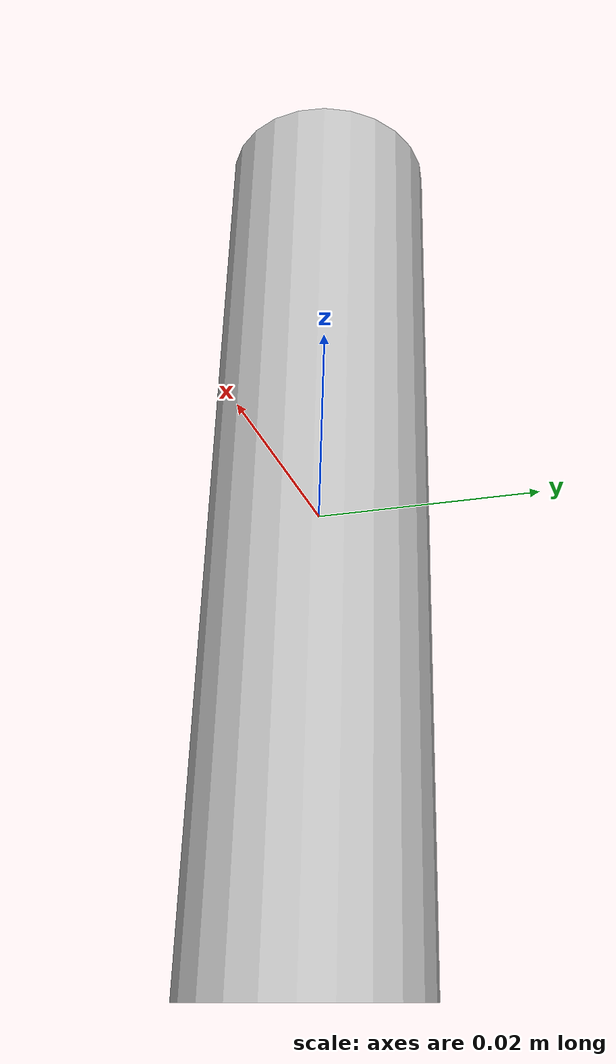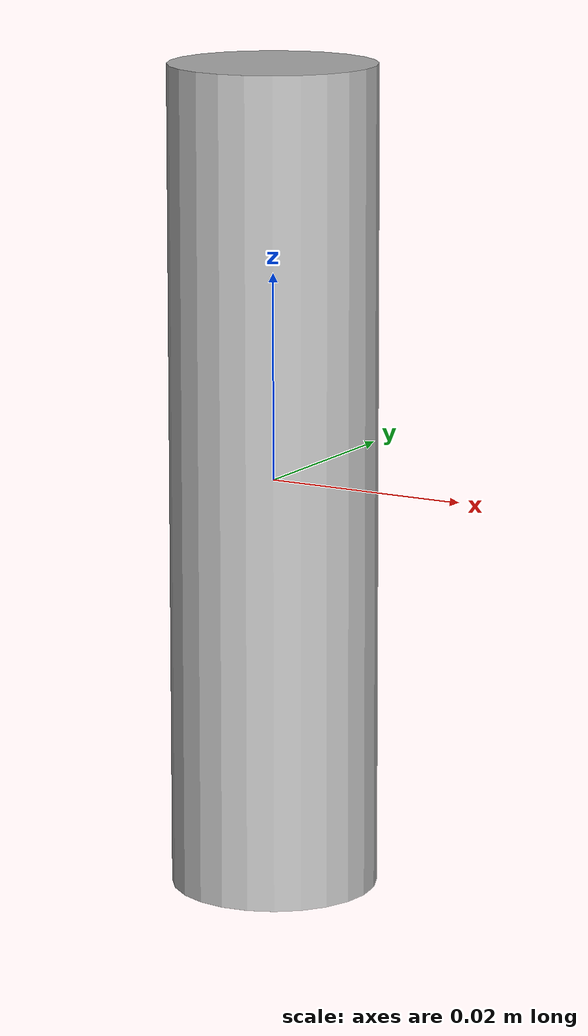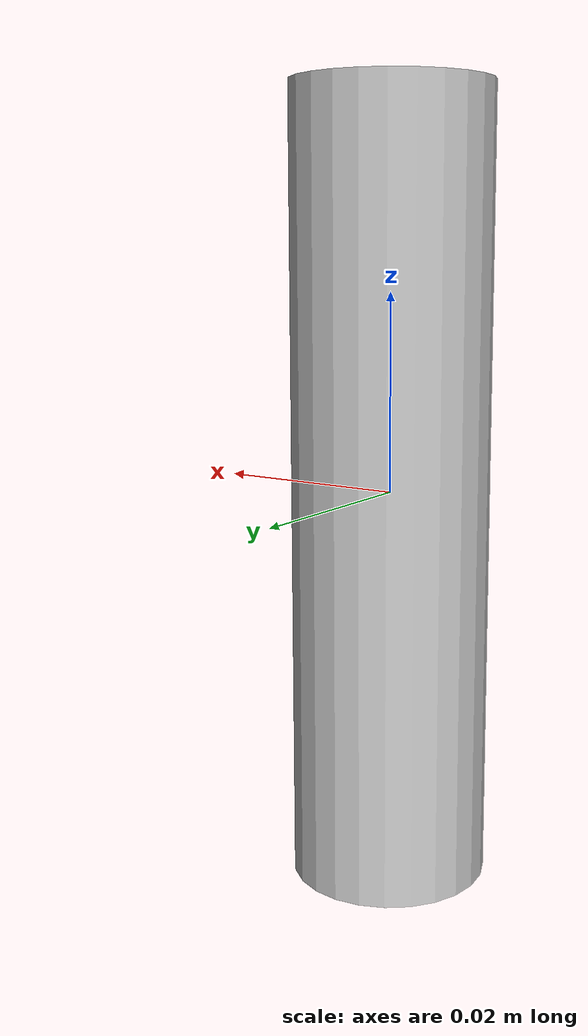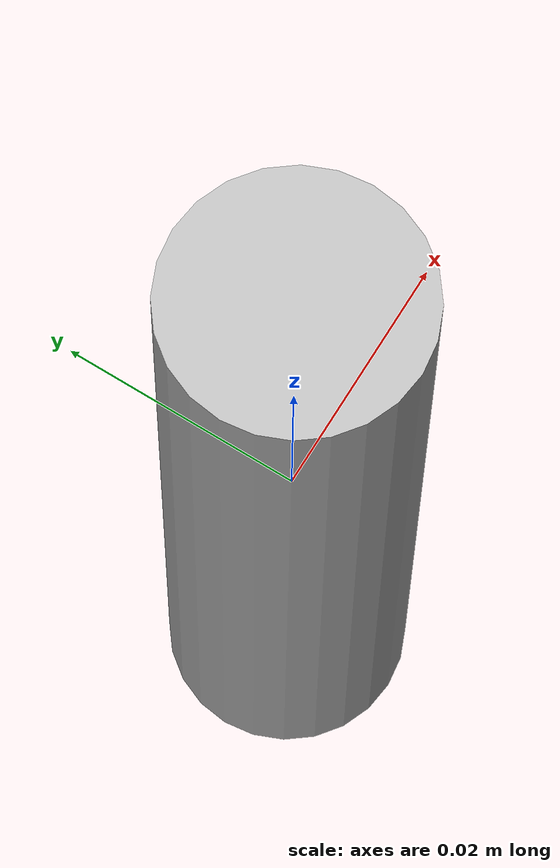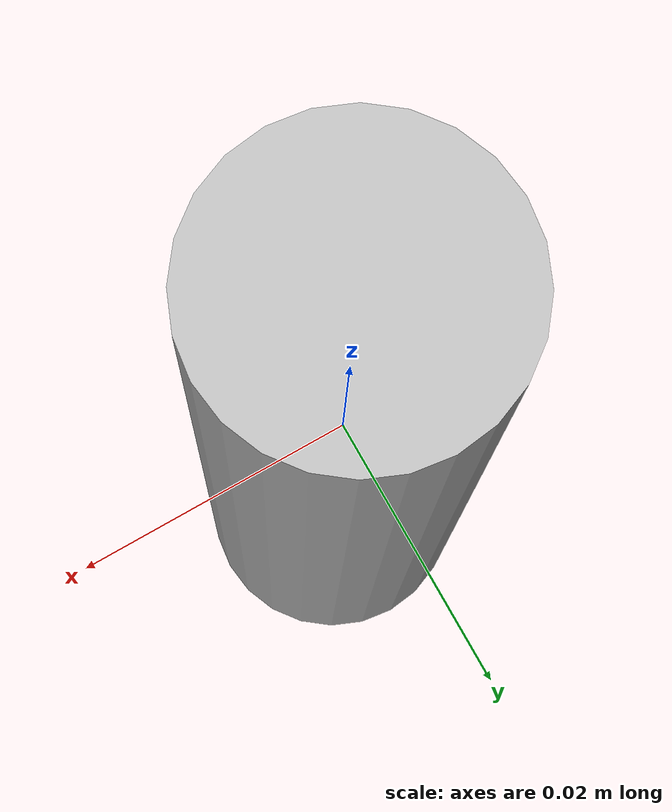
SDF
<?xml version="1.0" ?>
<sdf version="1.6">
  <model name="peg">

    <!-- Peg can move -->
    <static>false</static>

    <link name="link">

      <pose>0 0 0 0 0 0</pose>

      <!-- Inertial properties: very light 3D printed object -->
      <inertial>
        <mass>0.02</mass> <!-- 20 grams -->

        <!-- Rough inertia for a small cylinder -->
        <inertia>
          <ixx>2e-5</ixx>
          <iyy>2e-5</iyy>
          <izz>1e-5</izz>
          <ixy>0</ixy>
          <ixz>0</ixz>
          <iyz>0</iyz>
        </inertia>
      </inertial>

      <!-- Collision -->
      <collision name="collision">
        <geometry>
          <mesh>
            <uri>file:///root/MSBRDM/MSBRDM-Project/ur10_ws/src/tum_ics_ur10_robot/tum_ics_ur10_simulation_objects/models/peg/meshes/object_cylinder.stl</uri>
            <scale>0.001 0.001 0.001</scale>
          </mesh>
        </geometry>

        <surface>
          <friction>
            <ode>
              <mu>0.5</mu>
              <mu2>0.5</mu2>
            </ode>
          </friction>
          <contact>
            <ode>
              <kp>500000</kp>
              <kd>20</kd>
              <max_vel>0.1</max_vel>
              <min_depth>0.001</min_depth>
            </ode>
          </contact>
        </surface>
      </collision>

      <!-- Visual -->
      <visual name="visual">
        <geometry>
          <cylinder>
            <radius>0.01</radius>
            <length>0.08</length>
          </cylinder>
        </geometry>
      </visual>

    </link>
  </model>
</sdf>
